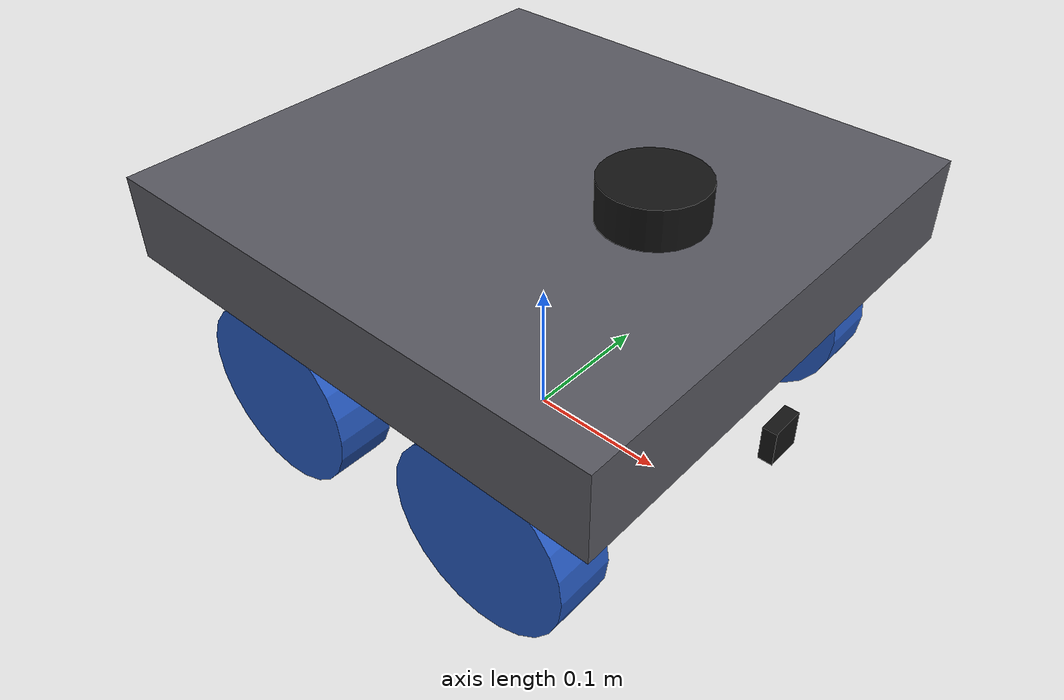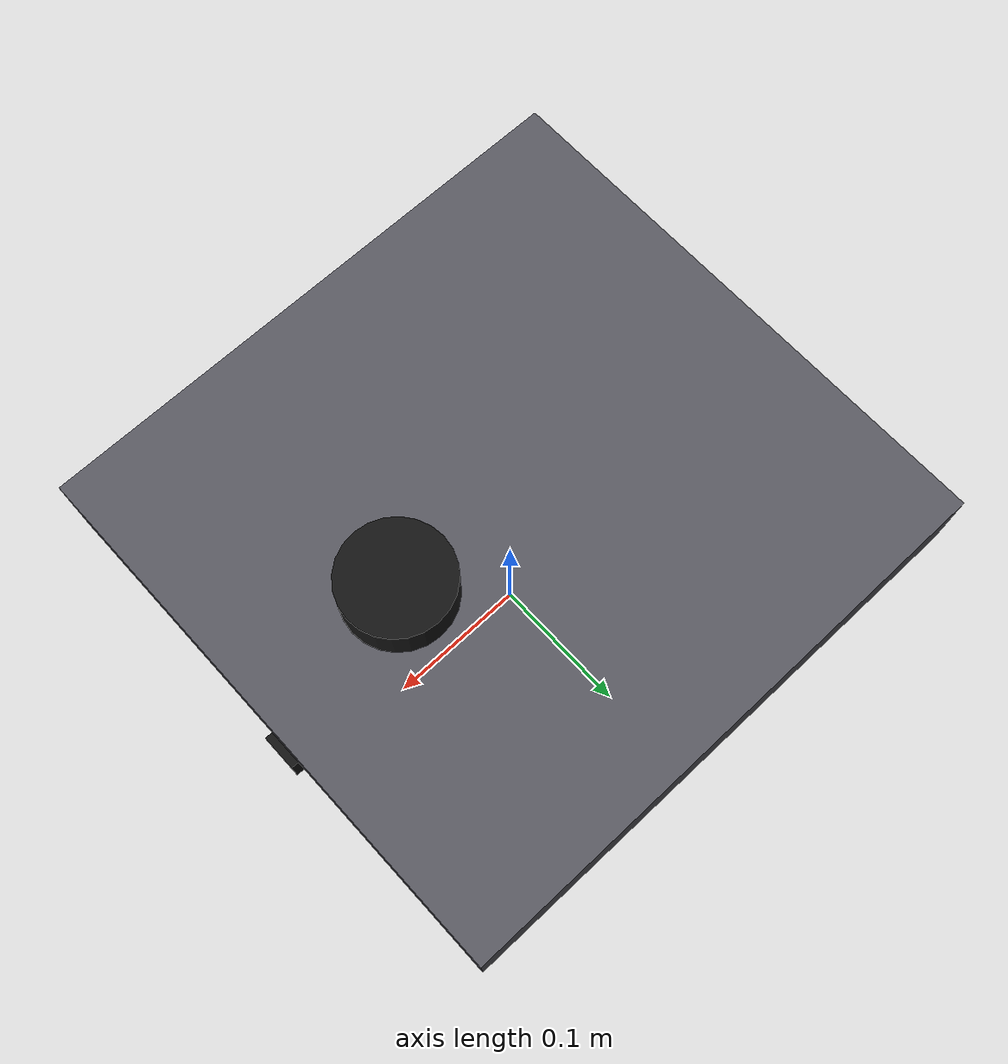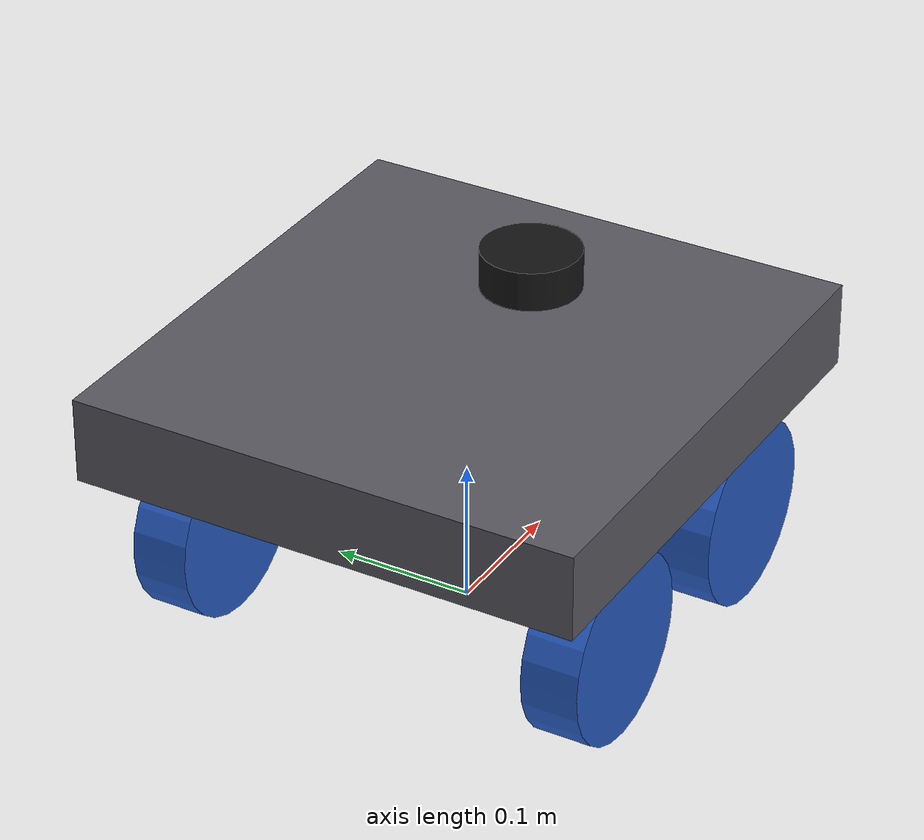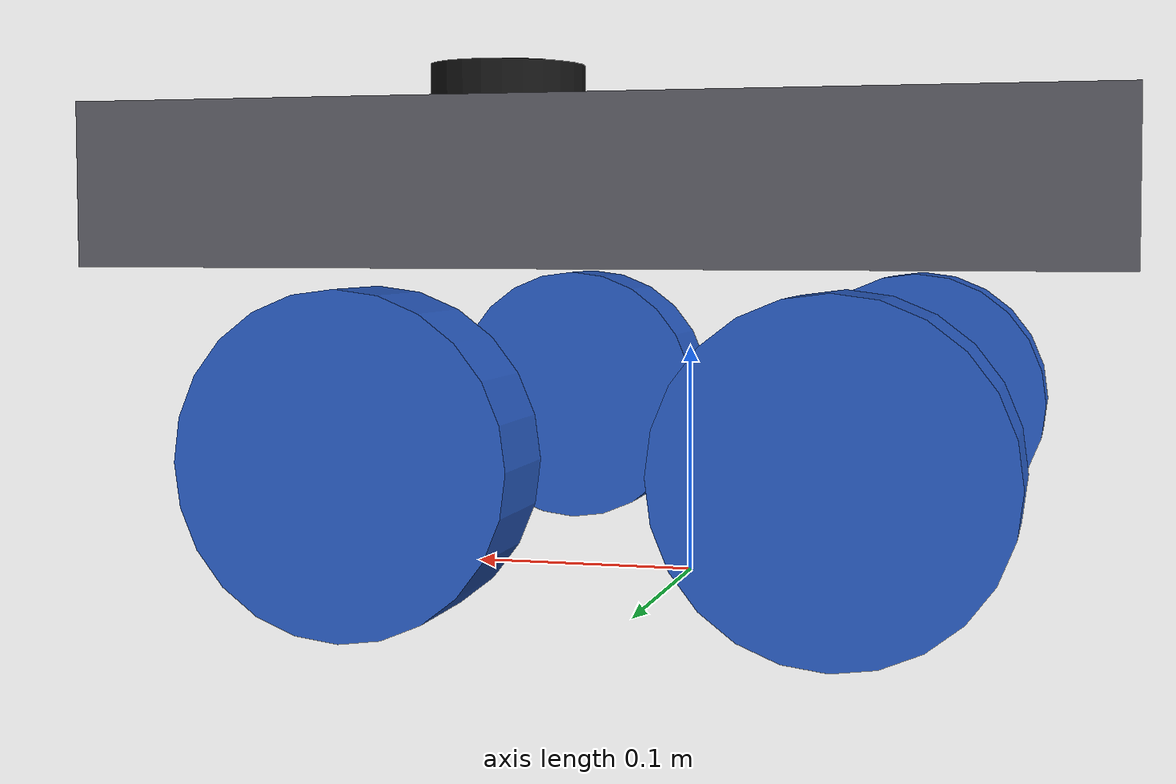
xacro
<?xml version="1.0"?>
<robot name="beetlebot" xmlns:xacro="http://www.ros.org/wiki/xacro">

  <!-- ============ VERIFIED GEOMETRY ============ -->
  <xacro:property name="base_link_height" value="0.163"/>   <!-- [SIM] base_footprint->base_link 16.3 cm -->
  <xacro:property name="body_length"      value="0.375"/>   <!-- [INT] 375 mm -->
  <xacro:property name="body_width"       value="0.360"/>   <!-- [INT] 360 mm -->
  <xacro:property name="wheel_radius"     value="0.065"/>   <!-- [HW] 130 mm diameter -->
  <xacro:property name="wheel_width"      value="0.040"/>   <!-- [HW] ~40 mm -->
  <xacro:property name="wheel_x_front"    value="0.094"/>   <!-- [SIM] fl_link x -->
  <xacro:property name="wheel_x_back"     value="-0.087"/>  <!-- [SIM] bl_link x -->
  <xacro:property name="wheel_y"          value="0.145"/>   <!-- [SIM] fl_link y (track/2) -->
  <xacro:property name="wheel_z"          value="-0.098"/>  <!-- [SIM] fl_link z -->
  <xacro:property name="lidar_x"          value="0.085"/>   <!-- [HW] "LiDAR is 8.5cm forward" -->
  <xacro:property name="lidar_ground_z"   value="0.206"/>   <!-- [HW][VIZ] 20.6 cm from ground -->
  <xacro:property name="camera_ground_z"  value="0.088"/>   <!-- [HW] 8.8 cm from ground -->
  <xacro:property name="total_mass"       value="2.2"/>     <!-- [INT] ~2.2 kg with battery -->

  <xacro:property name="body_height"      value="0.060"/>
  <xacro:property name="body_z_offset"    value="0.005"/>

  <xacro:property name="wheel_mass"       value="0.1"/>
  <xacro:property name="body_mass"        value="${total_mass - 4*wheel_mass}"/>

  <material name="grey"><color rgba="0.35 0.35 0.38 1"/></material>
  <material name="blue"><color rgba="0.15 0.35 0.75 1"/></material>
  <material name="black"><color rgba="0.08 0.08 0.08 1"/></material>

  <!-- ============ LINKS ============ -->
  <link name="base_footprint"/>

  <joint name="base_footprint_joint" type="fixed">
    <parent link="base_footprint"/>
    <child link="base_link"/>
    <origin xyz="0 0 ${base_link_height}" rpy="0 0 0"/>
  </joint>

  <link name="base_link">
    <visual>
      <origin xyz="0 0 ${body_z_offset}"/>
      <geometry><box size="${body_length} ${body_width} ${body_height}"/></geometry>
      <material name="grey"/>
    </visual>
    <collision>
      <origin xyz="0 0 ${body_z_offset}"/>
      <geometry><box size="${body_length} ${body_width} ${body_height}"/></geometry>
    </collision>
    <inertial>
      <origin xyz="0 0 ${body_z_offset}"/>
      <mass value="${body_mass}"/>
      <inertia
        ixx="${body_mass/12.0*(body_width*body_width + body_height*body_height)}" ixy="0" ixz="0"
        iyy="${body_mass/12.0*(body_length*body_length + body_height*body_height)}" iyz="0"
        izz="${body_mass/12.0*(body_length*body_length + body_width*body_width)}"/>
    </inertial>
  </link>

  <xacro:macro name="wheel" params="name x y">
    <link name="${name}_link">
      <visual>
        <origin rpy="1.5707963 0 0"/>
        <geometry><cylinder radius="${wheel_radius}" length="${wheel_width}"/></geometry>
        <material name="blue"/>
      </visual>
      <collision>
        <origin rpy="1.5707963 0 0"/>
        <geometry><cylinder radius="${wheel_radius}" length="${wheel_width}"/></geometry>
        <surface>
          <friction><ode><mu>1.0</mu><mu2>1.0</mu2></ode></friction>
        </surface>
      </collision>
      <inertial>
        <mass value="${wheel_mass}"/>
        <inertia
          ixx="${wheel_mass/12.0*(3*wheel_radius*wheel_radius + wheel_width*wheel_width)}" ixy="0" ixz="0"
          iyy="${wheel_mass*wheel_radius*wheel_radius/2.0}" iyz="0"
          izz="${wheel_mass/12.0*(3*wheel_radius*wheel_radius + wheel_width*wheel_width)}"/>
      </inertial>
    </link>
    <joint name="${name}_joint" type="continuous">
      <parent link="base_link"/>
      <child link="${name}_link"/>
      <origin xyz="${x} ${y} ${wheel_z}" rpy="0 0 0"/>
      <axis xyz="0 1 0"/>
    </joint>
  </xacro:macro>

  <!-- [SIM] fl/fr/bl/br_link, the four independently driven wheels (4WD skid-steer) -->
  <xacro:wheel name="fl" x="${wheel_x_front}" y="${wheel_y}"/>
  <xacro:wheel name="fr" x="${wheel_x_front}" y="${-wheel_y}"/>
  <xacro:wheel name="bl" x="${wheel_x_back}"  y="${wheel_y}"/>
  <xacro:wheel name="br" x="${wheel_x_back}"  y="${-wheel_y}"/>

  <!-- RPLidar C1: 8.5 cm forward of chassis centre, 20.6 cm above ground [HW] -->
  <link name="lidar_link">
    <visual>
      <geometry><cylinder radius="0.035" length="0.040"/></geometry>
      <material name="black"/>
    </visual>
    <inertial><mass value="0.05"/>
      <inertia ixx="1e-5" ixy="0" ixz="0" iyy="1e-5" iyz="0" izz="1e-5"/>
    </inertial>
  </link>
  <joint name="lidar_joint" type="fixed">
    <parent link="base_link"/>
    <child link="lidar_link"/>
    <origin xyz="${lidar_x} 0 ${lidar_ground_z - base_link_height}" rpy="0 0 0"/>
  </joint>

  <link name="camera_link">
    <visual><geometry><box size="0.01 0.025 0.025"/></geometry><material name="black"/></visual>
    <inertial><mass value="0.01"/>
      <inertia ixx="1e-6" ixy="0" ixz="0" iyy="1e-6" iyz="0" izz="1e-6"/>
    </inertial>
  </link>
  <joint name="camera_joint" type="fixed">
    <parent link="base_link"/>
    <child link="camera_link"/>
    <origin xyz="${body_length/2} 0 ${camera_ground_z - base_link_height}" rpy="0 0 0"/>
  </joint>
  <link name="camera_optical_link"/>
  <joint name="camera_optical_joint" type="fixed">
    <parent link="camera_link"/>
    <child link="camera_optical_link"/>
    <origin xyz="0 0 0" rpy="-1.5707963 0 -1.5707963"/>
  </joint>

  <!-- IMU LSM6DSRTR, on the Lyra board [HW].
       [MODEL] Its position on the board is not published; base_link origin is
       used. The navigation code does not subscribe to the IMU. -->
  <link name="imu_link">
    <inertial><mass value="0.005"/>
      <inertia ixx="1e-7" ixy="0" ixz="0" iyy="1e-7" iyz="0" izz="1e-7"/>
    </inertial>
  </link>
  <joint name="imu_joint" type="fixed">
    <parent link="base_link"/>
    <child link="imu_link"/>
    <origin xyz="0 0 0" rpy="0 0 0"/>
  </joint>

  <!-- ============ GAZEBO SENSORS AND PLUGINS ============ -->

  <gazebo reference="base_link"><material>Gazebo/Grey</material></gazebo>
  <xacro:macro name="wheel_gz" params="name">
    <gazebo reference="${name}_link">
      <mu1>1.0</mu1><mu2>1.0</mu2>
      <kp>1e6</kp><kd>1.0</kd>
    </gazebo>
  </xacro:macro>
  <xacro:wheel_gz name="fl"/><xacro:wheel_gz name="fr"/>
  <xacro:wheel_gz name="bl"/><xacro:wheel_gz name="br"/>

  <gazebo reference="lidar_link">
    <sensor name="rplidar_c1" type="gpu_lidar">
      <topic>scan</topic>
      <gz_frame_id>lidar_link</gz_frame_id>
      <update_rate>10</update_rate>
      <always_on>1</always_on>
      <visualize>false</visualize>
      <lidar>
        <scan>
          <horizontal>
            <samples>720</samples>
            <resolution>1</resolution>
            <min_angle>-3.141592653589793</min_angle>
            <max_angle>3.141592653589793</max_angle>
          </horizontal>
          <vertical>
            <samples>1</samples><resolution>1</resolution>
            <min_angle>0</min_angle><max_angle>0</max_angle>
          </vertical>
        </scan>
        <range><min>0.10</min><max>12.0</max><resolution>0.01</resolution></range>
      </lidar>
    </sensor>
  </gazebo>

  <gazebo reference="imu_link">
    <sensor name="lsm6dsrtr" type="imu">
      <topic>imu</topic>
      <gz_frame_id>imu_link</gz_frame_id>
      <update_rate>100</update_rate>
      <always_on>1</always_on>
      <imu>
        <angular_velocity>
          <x><noise type="gaussian"><mean>0</mean><stddev>0.0035</stddev></noise></x>
          <y><noise type="gaussian"><mean>0</mean><stddev>0.0035</stddev></noise></y>
          <z><noise type="gaussian"><mean>0</mean><stddev>0.0035</stddev></noise></z>
        </angular_velocity>
        <linear_acceleration>
          <x><noise type="gaussian"><mean>0</mean><stddev>0.045</stddev></noise></x>
          <y><noise type="gaussian"><mean>0</mean><stddev>0.045</stddev></noise></y>
          <z><noise type="gaussian"><mean>0</mean><stddev>0.045</stddev></noise></z>
        </linear_acceleration>
      </imu>
    </sensor>
  </gazebo>

  <gazebo>
    <plugin filename="gz-sim-diff-drive-system" name="gz::sim::systems::DiffDrive">
      <left_joint>fl_joint</left_joint>
      <left_joint>bl_joint</left_joint>
      <right_joint>fr_joint</right_joint>
      <right_joint>br_joint</right_joint>
      <wheel_separation>0.29</wheel_separation>
      <wheel_radius>0.065</wheel_radius>
      <topic>cmd_vel</topic>
      <odom_topic>odom</odom_topic>
      <tf_topic>/model/beetlebot/tf</tf_topic>
      <frame_id>odom</frame_id>
      <child_frame_id>base_footprint</child_frame_id>
      <odom_publish_frequency>30</odom_publish_frequency>
      <max_linear_acceleration>0.68</max_linear_acceleration>
      <min_linear_acceleration>-0.68</min_linear_acceleration>
      <max_linear_velocity>1.0</max_linear_velocity>
      <min_linear_velocity>-1.0</min_linear_velocity>
      <max_angular_velocity>2.0</max_angular_velocity>
      <min_angular_velocity>-2.0</min_angular_velocity>
    </plugin>

    <plugin filename="gz-sim-joint-state-publisher-system"
            name="gz::sim::systems::JointStatePublisher">
      <topic>joint_states</topic>
    </plugin>
  </gazebo>

</robot>
